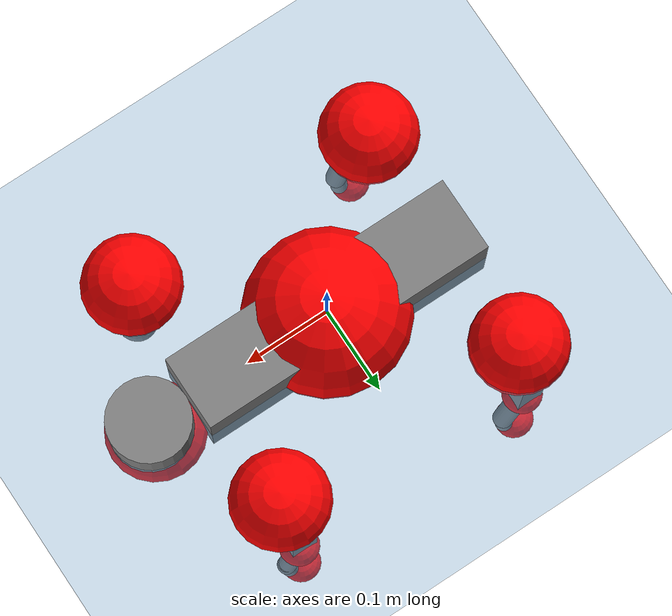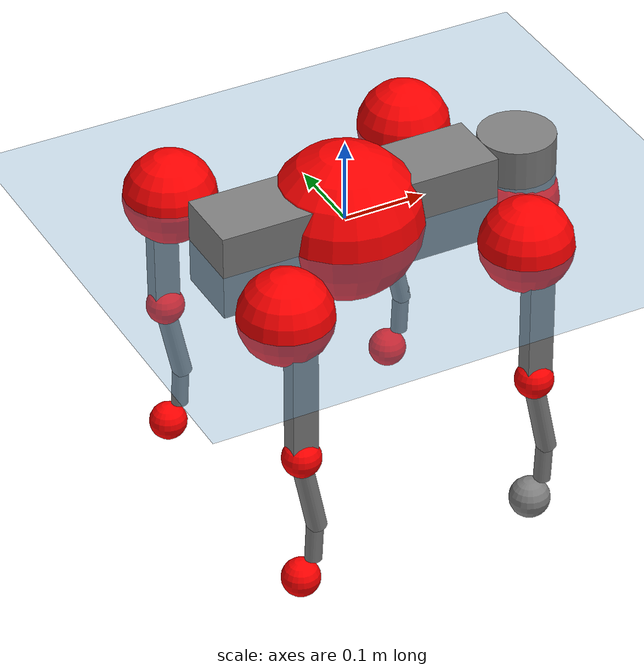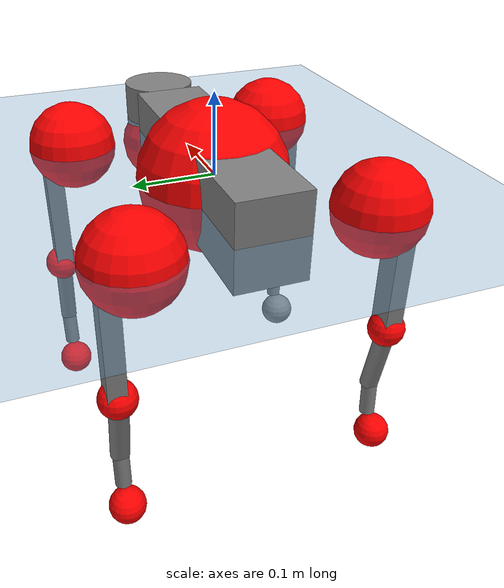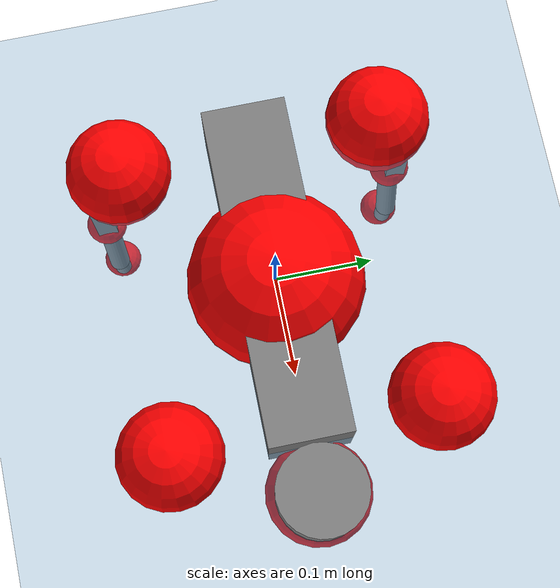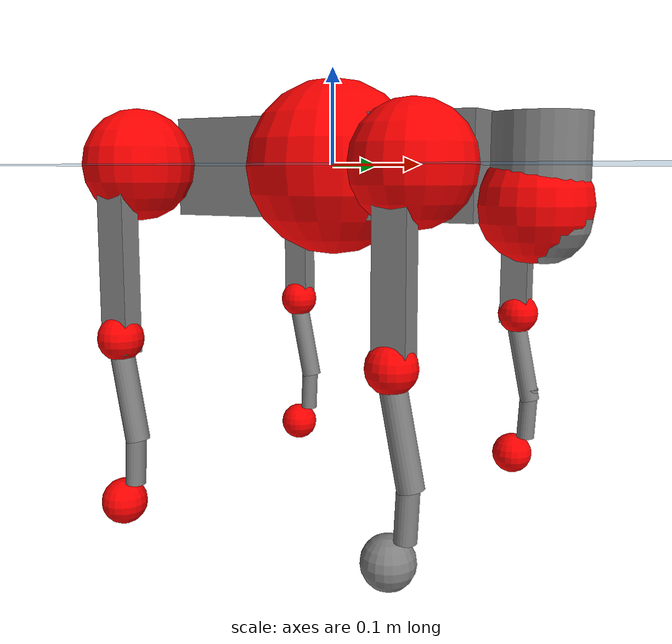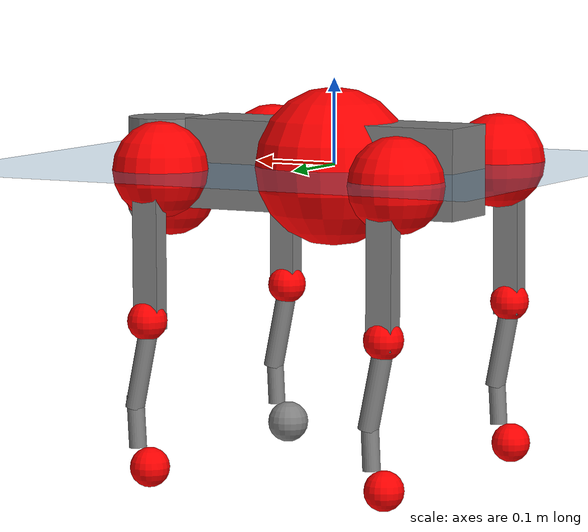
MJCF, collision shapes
<mujoco model="go2">
  <compiler angle="radian" assetdir="assets" balanceinertia="true" inertiafromgeom="false"/>

  <option timestep="0.005" density="1.2" viscosity="2e-05"/>

  <size nkey="1"/>

  <visual>
    <quality shadowsize="8192"/>
    <map shadowclip="0.5"/>
  </visual>

  <default>
    <default class="/">
      <geom contype="0" conaffinity="0" group="1" solref="-1000 -80"/>
      <site size="0.01 0.005 0.005" group="5"/>
      <general forcelimited="true" biastype="affine" gainprm="20" biasprm="0 -20 -0.5"/>
      <default class="go2">
        <joint armature="0.01" damping="0.01" frictionloss="0.2"/>
        <geom condim="1" margin="0.001"/>
        <default class="visual">
          <geom type="mesh" group="2"/>
        </default>
        <default class="collision">
          <geom group="3"/>
          <default class="foot">
            <geom size="0.022 0 0" condim="6" priority="1" friction="0.8 0.02 0.01" solimp="0.015 1 0.022"/>
          </default>
        </default>
        <default class="reward_collision_sphere">
          <geom group="5" rgba="1 0 0 1"/>
        </default>
      </default>
    </default>
  </default>

  <asset>
    <texture type="skybox" colorspace="auto" name="//unnamed_texture_0" builtin="gradient" rgb1="0.95 0.95 0.95" rgb2="0.95 0.95 0.95" width="100" height="600"/>
    <texture type="2d" colorspace="auto" name="texplane" builtin="checker" rgb1="0.345 0.575 0.748" rgb2="0.345 0.575 0.748" markrgb="1 1 1" width="512" height="512"/>
    <material name="MatPlane" class="/" texture="texplane" texuniform="true" texrepeat="2 2" specular="0.9"/>
    <material name="metal" class="/" rgba="0.9 0.95 0.95 1"/>
    <material name="black" class="/" rgba="0 0 0 1"/>
    <material name="white" class="/"/>
    <material name="gray" class="/" rgba="0.671705 0.692426 0.77427 1"/>
    <mesh name="base_0" class="/" file="base_0.obj"/>
    <mesh name="base_1" class="/" file="base_1.obj"/>
    <mesh name="base_2" class="/" file="base_2.obj"/>
    <mesh name="base_3" class="/" file="base_3.obj"/>
    <mesh name="base_4" class="/" file="base_4.obj"/>
    <mesh name="hip_0" class="/" file="hip_0.obj"/>
    <mesh name="hip_1" class="/" file="hip_1.obj"/>
    <mesh name="thigh_0" class="/" file="thigh_0.obj"/>
    <mesh name="thigh_1" class="/" file="thigh_1.obj"/>
    <mesh name="thigh_mirror_0" class="/" file="thigh_mirror_0.obj"/>
    <mesh name="thigh_mirror_1" class="/" file="thigh_mirror_1.obj"/>
    <mesh name="calf_0" class="/" file="calf_0.obj"/>
    <mesh name="calf_1" class="/" file="calf_1.obj"/>
    <mesh name="calf_mirror_0" class="/" file="calf_mirror_0.obj"/>
    <mesh name="calf_mirror_1" class="/" file="calf_mirror_1.obj"/>
    <mesh name="foot" class="/" file="foot.obj"/>
  </asset>

  <worldbody>
    <geom name="floor" class="/" size="100 100 0.125" type="plane" group="0" material="MatPlane"/>
    <light name="toplight_shadow" class="/" pos="0 0 5" dir="0.0990148 0.0990148 -0.990148" type="directional" ambient="0.04 0.04 0.04" diffuse="0.55 0.55 0.55" specular="0.12 0.12 0.12"/>
    <light name="toplight_fill" class="/" pos="0 0 5" dir="0.0990148 0.0990148 -0.990148" type="directional" castshadow="false" ambient="0.04 0.04 0.04" diffuse="0.3 0.3 0.3" specular="0.08 0.08 0.08"/>
    <body name="trunk" childclass="go2" pos="0.000110112 0.000930415 -0.00208257" quat="1 -0.000483564 -2.74991e-05 -7.87526e-05">
      <inertial pos="0.0161158 0.00539916 -0.00567818" quat="-0.000273246 0.713429 -0.00277722 0.700722" mass="5.6203" diaginertia="0.0347431 0.249414 0.00797885"/>
      <joint name="//unnamed_joint_0" type="free" armature="0" damping="0" frictionloss="0"/>
      <geom name="//unnamed_geom_1" class="visual" material="black" mesh="base_0"/>
      <geom name="//unnamed_geom_2" class="visual" material="black" mesh="base_1"/>
      <geom name="//unnamed_geom_3" class="visual" material="black" mesh="base_2"/>
      <geom name="//unnamed_geom_4" class="visual" material="white" mesh="base_3"/>
      <geom name="//unnamed_geom_5" class="visual" material="gray" mesh="base_4"/>
      <geom name="trunk_1" class="collision" size="0.173405 0.0430977 0.0525469" type="box"/>
      <geom name="trunk_2" class="collision" size="0.0460938 0.0414844" pos="0.221913 0 0.0079496" type="cylinder"/>
      <geom name="trunk_3" class="collision" size="0.0433281" pos="0.228142 0 -0.0476976"/>
      <geom name="//unnamed_geom_9" class="reward_collision_sphere" size="0.0921875"/>
      <geom name="//unnamed_geom_10" class="reward_collision_sphere" size="0.0553125" pos="0.21802 0 -0.0357732"/>
      <site name="imu" pos="-0.0296296 0.00627778 0.039826" size="0.00921875"/>
      <camera name="track" pos="0 -2.38405 0" quat="0.707107 0.707107 0 0" mode="trackcom"/>
      <camera name="ego_camera" pos="0.242936 0 0.0357732" quat="-0.5 -0.5 0.5 0.5"/>
      <body name="FL_hip" pos="0.150864 0.055886 0.00160014" quat="1 -0.000857825 0.000144335 -1.99001e-05">
        <inertial pos="-0.00426147 0.00515276 0.00122818" quat="0.474267 0.514388 0.521033 0.488877" mass="0.549747" diaginertia="0.000256136 0.00146015 0.000155025"/>
        <joint name="FL_hip_joint" pos="0 0 0" axis="0.999999 0.000580438 0.000853548" range="-1.05757 0.999287" armature="0.008922" damping="0.0245608" frictionloss="0.189147"/>
        <geom name="//unnamed_geom_11" class="visual" material="metal" mesh="hip_0"/>
        <geom name="//unnamed_geom_12" class="visual" material="gray" mesh="hip_1"/>
        <geom name="//unnamed_geom_13" class="collision" size="0.0424063 0.0184375" pos="0 0.0953619 0" quat="0.707107 0.707107 0 0" type="cylinder"/>
        <geom name="//unnamed_geom_14" class="reward_collision_sphere" size="0.0553125" pos="0 0.0834417 0"/>
        <body name="FL_thigh" pos="-0.00245269 0.114237 0.00181384" quat="0.999996 -0.00120081 0.000608279 -0.00257752">
          <inertial pos="-0.00405171 -0.032443 -0.028067" quat="0.831822 0.078632 -0.0176792 0.54916" mass="0.901516" diaginertia="0.00176897 0.0130573 0.000275886"/>
          <joint name="FL_thigh_joint" pos="0 0 0" axis="-0.00534821 0.999984 0.00200202" stiffness="0.00336099" range="-1.54899 3.57849" armature="0.00678832" damping="0.0238873" frictionloss="0.18289"/>
          <geom name="//unnamed_geom_15" class="visual" material="metal" mesh="thigh_0"/>
          <geom name="//unnamed_geom_16" class="visual" material="gray" mesh="thigh_1"/>
          <geom name="//unnamed_geom_17" class="collision" size="0.0981797 0.011293 0.0156719" pos="0 0 -0.0846633" quat="0.707107 0 0.707107 0" type="box"/>
          <body name="FL_calf" pos="0.00222909 0.00231785 -0.172496" quat="1 -0.000397005 0.000131852 -0.000579528">
            <inertial pos="0.00857095 -0.000280002 -0.109854" quat="0.7057 -0.00253466 -0.00812233 0.70846" mass="0.194853" diaginertia="0.000428392 0.00335199 1.65734e-05"/>
            <joint name="FL_calf_joint" pos="0 0 0" axis="-0.00324647 0.999994 0.00153225" range="-2.84016 -0.886807" armature="0.00909892" damping="0.0225043" frictionloss="0.202675"/>
            <geom name="//unnamed_geom_18" class="visual" material="gray" mesh="calf_0"/>
            <geom name="//unnamed_geom_19" class="visual" material="black" mesh="calf_1"/>
            <geom name="FL_calf0" class="collision" size="0.0110625 0.0553125" pos="0.00622914 0 -0.0476976" quat="0.994493 0 -0.104807 0" type="cylinder"/>
            <geom name="//unnamed_geom_21" class="collision" size="0.0101406 0.029961" pos="0.0155728 0 -0.117654" quat="0.999688 0 0.0249974 0" type="cylinder"/>
            <geom name="//unnamed_geom_22" class="visual" pos="0 0 -0.169327" quat="1 0 0 0" material="black" mesh="foot"/>
            <geom name="FL_foot" class="foot" size="0.0192159" pos="-0.00155728 0 -0.169327"/>
            <geom name="//unnamed_geom_24" class="reward_collision_sphere" size="0.0230469"/>
            <geom name="//unnamed_geom_25" class="reward_collision_sphere" size="0.0230469" pos="-0.00155728 0 -0.169327"/>
            <site name="FL_foot" class="foot" pos="-0.00155728 0 -0.169327" size="0.00921875"/>
          </body>
        </body>
      </body>
      <body name="FR_hip" pos="0.15606 -0.0558486 0.00130342" quat="0.999999 -0.000421016 -0.00133207 3.72295e-05">
        <inertial pos="-0.00614038 -0.000564166 -0.00198537" quat="0.510749 0.5105 0.485112 0.493144" mass="0.520867" diaginertia="0.000257553 0.00143264 0.000156027"/>
        <joint name="FR_hip_joint" pos="0 0 0" axis="1 0.000827224 -7.64792e-05" stiffness="0.0329884" range="-1.00699 0.984386" armature="0.0086812" damping="0.0258223" frictionloss="0.204853"/>
        <geom name="//unnamed_geom_26" class="visual" pos="0 3.45905e-09 1.48366e-07" quat="4.63268e-05 1 0 0" material="metal" mesh="hip_0"/>
        <geom name="//unnamed_geom_27" class="visual" pos="0 5.60754e-09 -3.66966e-07" quat="4.63268e-05 1 0 0" material="gray" mesh="hip_1"/>
        <geom name="//unnamed_geom_28" class="collision" size="0.0424063 0.0184375" pos="0 -0.0953619 0" quat="0.707107 0.707107 0 0" type="cylinder"/>
        <geom name="//unnamed_geom_29" class="reward_collision_sphere" size="0.0553125" pos="0 -0.0834417 0"/>
        <body name="FR_thigh" pos="-0.00155107 -0.113531 0.00583612" quat="1 0.000363752 -0.000343861 -0.000157008">
          <inertial pos="-0.00235203 0.0272988 -0.0304511" quat="0.54798 -0.0277303 0.0869438 0.831498" mass="0.934371" diaginertia="0.00173609 0.0142041 0.000281902"/>
          <joint name="FR_thigh_joint" pos="0 0 0" axis="-0.000464286 -1 2.48446e-05" range="-3.50455 1.60462" armature="0.0108234" damping="0" frictionloss="0.188407"/>
          <geom name="//unnamed_geom_30" class="visual" material="metal" mesh="thigh_mirror_0"/>
          <geom name="//unnamed_geom_31" class="visual" material="gray" mesh="thigh_mirror_1"/>
          <geom name="//unnamed_geom_32" class="collision" size="0.0981797 0.011293 0.0156719" pos="0 0 -0.0846633" quat="0.707107 0 0.707107 0" type="box"/>
          <body name="FR_calf" pos="-0.00161575 -0.000546249 -0.172584" quat="0.999999 -0.00126737 0.000203019 -0.000130359">
            <inertial pos="0.00539119 -8.75669e-05 -0.112539" quat="0.703509 -0.00842992 -0.00379807 0.710626" mass="0.175186" diaginertia="0.000388505 0.00321768 1.57307e-05"/>
            <joint name="FR_calf_joint" pos="0 0 0" axis="0.00853283 -0.999882 -0.0127928" range="0.878122 2.76588" armature="0.00822408" damping="0.0294263" frictionloss="0.168637"/>
            <geom name="//unnamed_geom_33" class="visual" material="gray" mesh="calf_mirror_0"/>
            <geom name="//unnamed_geom_34" class="visual" material="black" mesh="calf_mirror_1"/>
            <geom name="FR_calf0" class="collision" size="0.0119844 0.0553125" pos="0.00778642 0 -0.0476976" quat="0.995004 0 -0.0998334 0" type="cylinder"/>
            <geom name="//unnamed_geom_36" class="collision" size="0.0101406 0.029961" pos="0.0155728 0 -0.117654" quat="0.999688 0 0.0249974 0" type="cylinder"/>
            <geom name="//unnamed_geom_37" class="visual" pos="0 0 -0.169327" quat="1 0 0 0" material="black" mesh="foot"/>
            <geom name="FR_foot" class="foot" size="0.0245743" pos="-0.00155728 0 -0.169327"/>
            <geom name="//unnamed_geom_39" class="reward_collision_sphere" size="0.0230469"/>
            <geom name="//unnamed_geom_40" class="reward_collision_sphere" size="0.0230469" pos="-0.00155728 0 -0.169327"/>
            <site name="FR_foot" class="foot" pos="-0.00155728 0 -0.169327" size="0.00921875"/>
          </body>
        </body>
      </body>
      <body name="RL_hip" pos="-0.151004 0.0558229 -0.00356391" quat="1 0.000726918 -0.000650134 4.52498e-05">
        <inertial pos="0.00648036 0.000169346 -0.000516685" quat="0.500799 0.49726 0.507099 0.494757" mass="0.559829" diaginertia="0.000240529 0.00139439 0.000149549"/>
        <joint name="RL_hip_joint" pos="0 0 0" axis="-0.999837 -0.00584328 0.0170884" range="-1.11119 1.0102" armature="0.00812384" damping="0.0101229" frictionloss="0.165266"/>
        <geom name="//unnamed_geom_41" class="visual" pos="1.4216e-10 0 2.78667e-08" quat="4.63268e-05 0 1 0" material="metal" mesh="hip_0"/>
        <geom name="//unnamed_geom_42" class="visual" pos="2.30459e-10 0 2.47138e-08" quat="4.63268e-05 0 1 0" material="gray" mesh="hip_1"/>
        <geom name="//unnamed_geom_43" class="collision" size="0.0424063 0.0184375" pos="0 0.0953619 0" quat="0.707107 0.707107 0 0" type="cylinder"/>
        <geom name="//unnamed_geom_44" class="reward_collision_sphere" size="0.0553125" pos="0 0.0834417 0"/>
        <body name="RL_thigh" pos="0.00110851 0.112458 0.0016015" quat="0.999998 0.000702916 -0.00114378 -0.00175538">
          <inertial pos="-0.00329498 -0.0331024 -0.0242961" quat="0.828781 0.0814204 -0.0293965 0.552837" mass="0.962641" diaginertia="0.00169874 0.0140782 0.000266353"/>
          <joint name="RL_thigh_joint" pos="0 0 0" axis="-0.0293491 0.999561 -0.00416289" range="-0.568542 4.52011" armature="0.00888074" damping="0" frictionloss="0.1832"/>
          <geom name="//unnamed_geom_45" class="visual" material="metal" mesh="thigh_0"/>
          <geom name="//unnamed_geom_46" class="visual" material="gray" mesh="thigh_1"/>
          <geom name="//unnamed_geom_47" class="collision" size="0.0981797 0.011293 0.0156719" pos="0 0 -0.0846633" quat="0.707107 0 0.707107 0" type="box"/>
          <body name="RL_calf" pos="1.64562e-05 -0.002581 -0.17153" quat="1 -7.68258e-05 0.000119577 -0.000175034">
            <inertial pos="0.00504935 -0.00359616 -0.114302" quat="0.713633 0.00712328 -0.00325563 0.700476" mass="0.189606" diaginertia="0.000447195 0.00370277 1.78498e-05"/>
            <joint name="RL_calf_joint" pos="0 0 0" axis="0.000471311 0.99998 -0.00627407" range="-2.83159 -0.850012" armature="0.00652649" damping="0" frictionloss="0.190413"/>
            <geom name="//unnamed_geom_48" class="visual" material="gray" mesh="calf_0"/>
            <geom name="//unnamed_geom_49" class="visual" material="black" mesh="calf_1"/>
            <geom name="RL_calf0" class="collision" size="0.0119844 0.0553125" pos="0.00778642 0 -0.0476976" quat="0.995004 0 -0.0998334 0" type="cylinder"/>
            <geom name="//unnamed_geom_51" class="collision" size="0.0101406 0.029961" pos="0.0155728 0 -0.117654" quat="0.999688 0 0.0249974 0" type="cylinder"/>
            <geom name="//unnamed_geom_52" class="visual" pos="0 0 -0.169327" quat="1 0 0 0" material="black" mesh="foot"/>
            <geom name="RL_foot" class="foot" size="0.0218004" pos="-0.00155728 0 -0.169327"/>
            <geom name="//unnamed_geom_54" class="reward_collision_sphere" size="0.0230469"/>
            <geom name="//unnamed_geom_55" class="reward_collision_sphere" size="0.0230469" pos="-0.00155728 0 -0.169327"/>
            <site name="RL_foot" class="foot" pos="-0.00155728 0 -0.169327" size="0.00921875"/>
          </body>
        </body>
      </body>
      <body name="RR_hip" pos="-0.145332 -0.0551312 0.00159345" quat="0.999995 -0.000214058 0.00121409 0.00292795">
        <inertial pos="0.00544826 -0.0043085 -0.00154772" quat="0.498548 0.495991 0.499854 0.505558" mass="0.528289" diaginertia="0.000252184 0.00145986 0.000138969"/>
        <joint name="RR_hip_joint" pos="0 0 0" axis="-0.999977 0.00496481 -0.00460693" range="-1.09487 1.02642" armature="0.00722768" damping="0.00792715" frictionloss="0.181035"/>
        <geom name="//unnamed_geom_56" class="visual" pos="-1.27849e-10 3.45905e-09 -1.20499e-07" quat="2.14617e-09 4.63268e-05 4.63268e-05 -1" material="metal" mesh="hip_0"/>
        <geom name="//unnamed_geom_57" class="visual" pos="-2.65857e-10 5.60754e-09 3.9168e-07" quat="2.14617e-09 4.63268e-05 4.63268e-05 -1" material="gray" mesh="hip_1"/>
        <geom name="//unnamed_geom_58" class="collision" size="0.0424063 0.0184375" pos="0 -0.0953619 0" quat="0.707107 0.707107 0 0" type="cylinder"/>
        <geom name="//unnamed_geom_59" class="reward_collision_sphere" size="0.0553125" pos="0 -0.0834417 0"/>
        <body name="RR_thigh" pos="0.00102418 -0.116342 -0.00228479" quat="1 -0.000488798 0.000243632 0.000442355">
          <inertial pos="-0.00380533 0.028512 -0.0267415" quat="0.561236 -0.021703 0.0846803 0.823026" mass="0.954599" diaginertia="0.00170951 0.0140877 0.000290275"/>
          <joint name="RR_thigh_joint" pos="0 0 0" axis="0.00449565 -0.999971 0.0061792" range="-4.51628 0.404614" armature="0.0117214" damping="0" frictionloss="0.170293"/>
          <geom name="//unnamed_geom_60" class="visual" material="metal" mesh="thigh_mirror_0"/>
          <geom name="//unnamed_geom_61" class="visual" material="gray" mesh="thigh_mirror_1"/>
          <geom name="//unnamed_geom_62" class="collision" size="0.0981797 0.011293 0.0156719" pos="0 0 -0.0846633" quat="0.707107 0 0.707107 0" type="box"/>
          <body name="RR_calf" pos="-0.000310016 -0.000908035 -0.168334" quat="0.999999 -0.000109293 0.00110173 -0.000576128">
            <inertial pos="0.00474349 0.00302458 -0.11193" quat="0.703825 -0.00598439 0.000537329 0.710348" mass="0.185775" diaginertia="0.000435569 0.00353397 1.6372e-05"/>
            <joint name="RR_calf_joint" pos="0 0 0" axis="-0.0111789 -0.999934 -0.00263603" stiffness="0.00838804" range="0.763705 2.73865" armature="0.00856109" damping="0.00236331" frictionloss="0.186406"/>
            <geom name="//unnamed_geom_63" class="visual" material="gray" mesh="calf_mirror_0"/>
            <geom name="//unnamed_geom_64" class="visual" material="black" mesh="calf_mirror_1"/>
            <geom name="RR_calf0" class="collision" size="0.0119844 0.0553125" pos="0.00778642 0 -0.0476976" quat="0.995004 0 -0.0998334 0" type="cylinder"/>
            <geom name="//unnamed_geom_66" class="collision" size="0.0101406 0.029961" pos="0.0155728 0 -0.117654" quat="0.999688 0 0.0249974 0" type="cylinder"/>
            <geom name="//unnamed_geom_67" class="visual" pos="0 0 -0.169327" quat="1 0 0 0" material="black" mesh="foot"/>
            <geom name="RR_foot" class="foot" size="0.0153723" pos="-0.00155728 0 -0.169327"/>
            <geom name="//unnamed_geom_69" class="reward_collision_sphere" size="0.0230469"/>
            <geom name="//unnamed_geom_70" class="reward_collision_sphere" size="0.0230469" pos="-0.00155728 0 -0.169327"/>
            <site name="RR_foot" class="foot" pos="-0.00155728 0 -0.169327" size="0.00921875"/>
          </body>
        </body>
      </body>
    </body>
  </worldbody>

  <contact>
    <pair class="/" geom1="floor" geom2="FL_foot" name="//unnamed_contact_0"/>
    <pair class="/" geom1="floor" geom2="FR_foot" name="//unnamed_contact_1"/>
    <pair class="/" geom1="floor" geom2="RL_foot" name="//unnamed_contact_2"/>
    <pair class="/" geom1="floor" geom2="RR_foot" name="//unnamed_contact_3"/>
  </contact>

  <actuator>
    <general name="FL_hip" class="/" joint="FL_hip_joint" forcerange="-22.5726 22.5726" gainprm="18.2972" biasprm="0 -18.2972 -0.474116"/>
    <general name="FL_thigh" class="/" joint="FL_thigh_joint" forcerange="-22.7553 22.7553" gainprm="18.2972" biasprm="0 -18.2972 -0.474116"/>
    <general name="FL_calf" class="/" joint="FL_calf_joint" forcerange="-43.3054 43.3054" gainprm="18.2972" biasprm="0 -18.2972 -0.474116"/>
    <general name="FR_hip" class="/" joint="FR_hip_joint" forcerange="-21.3438 21.3438" gainprm="18.2972" biasprm="0 -18.2972 -0.474116"/>
    <general name="FR_thigh" class="/" joint="FR_thigh_joint" forcerange="-21.1223 21.1223" gainprm="18.2972" biasprm="0 -18.2972 -0.474116"/>
    <general name="FR_calf" class="/" joint="FR_calf_joint" forcerange="-44.3758 44.3758" gainprm="18.2972" biasprm="0 -18.2972 -0.474116"/>
    <general name="RL_hip" class="/" joint="RL_hip_joint" forcerange="-20.3034 20.3034" gainprm="18.2972" biasprm="0 -18.2972 -0.474116"/>
    <general name="RL_thigh" class="/" joint="RL_thigh_joint" forcerange="-21.6554 21.6554" gainprm="18.2972" biasprm="0 -18.2972 -0.474116"/>
    <general name="RL_calf" class="/" joint="RL_calf_joint" forcerange="-45.8192 45.8192" gainprm="18.2972" biasprm="0 -18.2972 -0.474116"/>
    <general name="RR_hip" class="/" joint="RR_hip_joint" forcerange="-21.234 21.234" gainprm="18.2972" biasprm="0 -18.2972 -0.474116"/>
    <general name="RR_thigh" class="/" joint="RR_thigh_joint" forcerange="-23.1851 23.1851" gainprm="18.2972" biasprm="0 -18.2972 -0.474116"/>
    <general name="RR_calf" class="/" joint="RR_calf_joint" forcerange="-35.5604 35.5604" gainprm="18.2972" biasprm="0 -18.2972 -0.474116"/>
  </actuator>

  <sensor>
    <gyro site="imu" name="imu_angular_velocity"/>
    <velocimeter site="imu" name="imu_linear_velocity"/>
    <framelinvel objtype="site" objname="FL_foot" name="FL_foot_global_linear_velocity"/>
    <framelinvel objtype="site" objname="FR_foot" name="FR_foot_global_linear_velocity"/>
    <framelinvel objtype="site" objname="RL_foot" name="RL_foot_global_linear_velocity"/>
    <framelinvel objtype="site" objname="RR_foot" name="RR_foot_global_linear_velocity"/>
  </sensor>

  <keyframe>
    <key name="home" qpos="0 0 0.325 1 0 0 0 0.1 0.8 -1.5 -0.1 -0.8 1.5 -0.1 0.8 -1.5 0.1 -0.8 1.5"/>
  </keyframe>
</mujoco>
